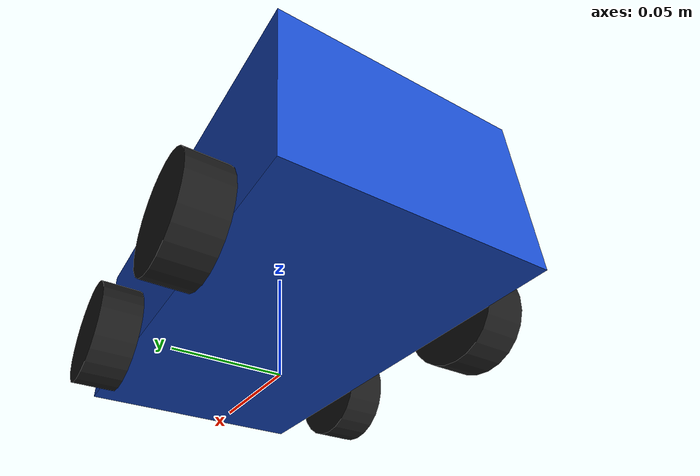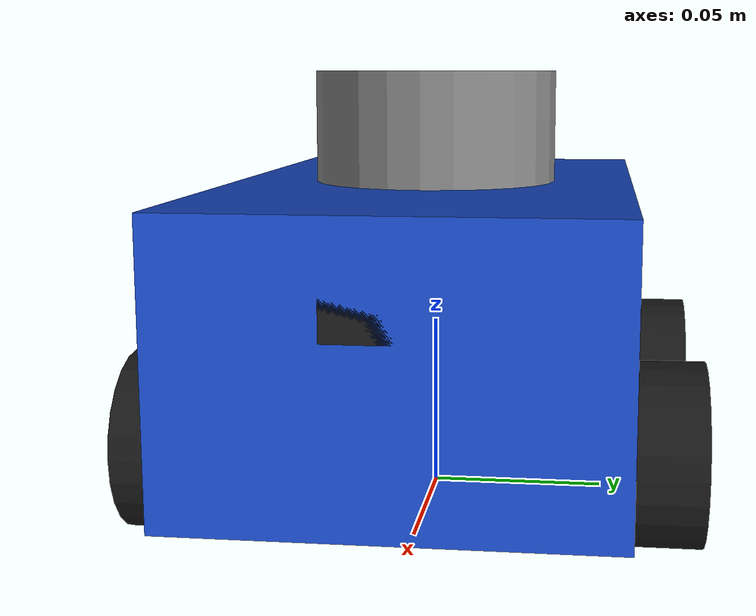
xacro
<?xml version="1.0"?>
<robot name="mi_robot" xmlns:xacro="http://www.ros.org/wiki/xacro">

  <!-- ===================== PARÁMETROS (MicroROS Yahboom) ===================== -->
  <xacro:property name="PI" value="3.14159265"/>

  <!-- Geometría -->
  <xacro:property name="largo"        value="0.1986"/>
  <xacro:property name="ancho_total"  value="0.153"/>
  <xacro:property name="via"          value="0.134"/>   <!-- centro a centro -->
  <xacro:property name="entre_ejes"   value="0.096"/>
  <xacro:property name="r_rueda"      value="0.0245"/>  <!-- diametro 49 mm -->
  <xacro:property name="ancho_rueda"  value="${ancho_total - via}"/>

  <!-- Chasis: de 15 mm a 92 mm sobre el suelo -->
  <xacro:property name="chasis_ancho" value="${via - ancho_rueda}"/>
  <xacro:property name="chasis_alto"  value="0.077"/>
  <xacro:property name="chasis_z"     value="0.0535"/>

  <!-- LiDAR MS200: centro a 108 mm; 92 + 32 = 124 mm de altura total -->
  <xacro:property name="lidar_z" value="0.108"/>
  <xacro:property name="lidar_r" value="0.035"/>
  <xacro:property name="lidar_h" value="0.032"/>

  <!-- Masas (suma = 0.906 kg) -->
  <xacro:property name="masa_total" value="0.906"/>
  <xacro:property name="m_rueda"    value="0.040"/>
  <xacro:property name="m_lidar"    value="0.060"/>
  <xacro:property name="m_camara"   value="0.020"/>
  <xacro:property name="m_chasis"   value="${masa_total - 4*m_rueda - m_lidar - m_camara}"/>

  <!-- Limites -->
  <xacro:property name="v_max"     value="1.0"/>
  <xacro:property name="w_max"     value="4.0"/>
  <xacro:property name="a_max"     value="2.0"/>
  <xacro:property name="alpha_max" value="${2*a_max/via}"/>   <!-- ~29.9 rad/s2 -->
  <xacro:property name="w_motor"   value="${450*2*PI/60}"/>   <!-- 47.1 rad/s -->
  <xacro:property name="tau_motor" value="0.392"/>            <!-- 4 kg.cm -->

  <!-- ===================== MATERIALES ===================== -->
  <material name="azul">  <color rgba="0.1 0.3 0.8 1"/></material>
  <material name="negro"> <color rgba="0.1 0.1 0.1 1"/></material>
  <material name="gris">  <color rgba="0.5 0.5 0.5 1"/></material>

  <!-- ===================== MACROS DE INERCIA ===================== -->
  <xacro:macro name="inercia_caja" params="m x y z xyz">
    <inertial>
      <origin xyz="${xyz}" rpy="0 0 0"/>
      <mass value="${m}"/>
      <inertia ixx="${m*(y*y+z*z)/12}" ixy="0" ixz="0"
               iyy="${m*(x*x+z*z)/12}" iyz="0"
               izz="${m*(x*x+y*y)/12}"/>
    </inertial>
  </xacro:macro>

  <xacro:macro name="inercia_cilindro" params="m r h xyz rpy">
    <inertial>
      <origin xyz="${xyz}" rpy="${rpy}"/>
      <mass value="${m}"/>
      <inertia ixx="${m*(3*r*r+h*h)/12}" ixy="0" ixz="0"
               iyy="${m*(3*r*r+h*h)/12}" iyz="0"
               izz="${m*r*r/2}"/>
    </inertial>
  </xacro:macro>

  <!-- ===================== CHASIS ===================== -->
  <link name="base_link">
    <visual>
      <origin xyz="0 0 ${chasis_z}"/>
      <geometry><box size="${largo} ${chasis_ancho} ${chasis_alto}"/></geometry>
      <material name="azul"/>
    </visual>
    <collision>
      <origin xyz="0 0 ${chasis_z}"/>
      <geometry><box size="${largo} ${chasis_ancho} ${chasis_alto}"/></geometry>
    </collision>
    <xacro:inercia_caja m="${m_chasis}" x="${largo}" y="${chasis_ancho}"
                        z="${chasis_alto}" xyz="0 0 ${chasis_z}"/>
  </link>

  <!-- ===================== RUEDAS (skid-steer) ===================== -->
  <xacro:macro name="rueda" params="nombre x y">
    <link name="${nombre}">
      <visual>
        <origin rpy="${PI/2} 0 0"/>
        <geometry><cylinder radius="${r_rueda}" length="${ancho_rueda}"/></geometry>
        <material name="negro"/>
      </visual>
      <collision>
        <origin rpy="${PI/2} 0 0"/>
        <geometry><cylinder radius="${r_rueda}" length="${ancho_rueda}"/></geometry>
      </collision>
      <xacro:inercia_cilindro m="${m_rueda}" r="${r_rueda}" h="${ancho_rueda}"
                              xyz="0 0 0" rpy="${PI/2} 0 0"/>
    </link>

    <joint name="${nombre}_joint" type="continuous">
      <parent link="base_link"/>
      <child link="${nombre}"/>
      <origin xyz="${x} ${y} ${r_rueda}"/>
      <axis xyz="0 1 0"/>
      <limit effort="${tau_motor}" velocity="${w_motor}"/>
    </joint>

    <gazebo reference="${nombre}">
      <mu1>1.0</mu1>
      <mu2>1.0</mu2>
    </gazebo>
  </xacro:macro>

  <xacro:rueda nombre="rueda_del_izq"  x="${ entre_ejes/2}" y="${ via/2}"/>
  <xacro:rueda nombre="rueda_tras_izq" x="${-entre_ejes/2}" y="${ via/2}"/>
  <xacro:rueda nombre="rueda_del_der"  x="${ entre_ejes/2}" y="${-via/2}"/>
  <xacro:rueda nombre="rueda_tras_der" x="${-entre_ejes/2}" y="${-via/2}"/>

  <!-- ===================== LIDAR ===================== -->
  <link name="lidar_link">
    <visual>
      <geometry><cylinder radius="${lidar_r}" length="${lidar_h}"/></geometry>
      <material name="gris"/>
    </visual>
    <collision>
      <geometry><cylinder radius="${lidar_r}" length="${lidar_h}"/></geometry>
    </collision>
    <xacro:inercia_cilindro m="${m_lidar}" r="${lidar_r}" h="${lidar_h}"
                            xyz="0 0 0" rpy="0 0 0"/>
  </link>
  <joint name="lidar_joint" type="fixed">
    <parent link="base_link"/>
    <child link="lidar_link"/>
    <origin xyz="0 0 ${lidar_z}"/>
  </joint>

  <!-- ===================== CAMARA ===================== -->
  <link name="camera_link">
    <visual>
      <geometry><box size="0.015 0.03 0.015"/></geometry>
      <material name="negro"/>
    </visual>
    <collision>
      <geometry><box size="0.015 0.03 0.015"/></geometry>
    </collision>
    <xacro:inercia_caja m="${m_camara}" x="0.015" y="0.03" z="0.015" xyz="0 0 0"/>
  </link>
  <joint name="camera_joint" type="fixed">
    <parent link="base_link"/>
    <child link="camera_link"/>
    <origin xyz="${largo/2 - 0.0075} 0 0.07"/>
  </joint>

  <link name="camera_optical_link"/>
  <joint name="camera_optical_joint" type="fixed">
    <parent link="camera_link"/>
    <child link="camera_optical_link"/>
    <origin rpy="${-PI/2} 0 ${-PI/2}"/>
  </joint>

  <!-- ===================== SENSORES GAZEBO ===================== -->
  <gazebo reference="lidar_link">
    <sensor name="lidar" type="gpu_lidar">
      <topic>scan</topic>
      <gz_frame_id>lidar_link</gz_frame_id>
      <update_rate>10</update_rate>
      <always_on>true</always_on>
      <visualize>true</visualize>
      <lidar>
        <scan>
          <horizontal>
            <samples>450</samples>
            <resolution>1</resolution>
            <min_angle>${-PI}</min_angle>
            <max_angle>${PI - 2*PI/450}</max_angle>
          </horizontal>
          <vertical>
            <samples>1</samples><resolution>1</resolution>
            <min_angle>0</min_angle><max_angle>0</max_angle>
          </vertical>
        </scan>
        <range>
          <min>0.03</min>
          <max>12.0</max>
          <resolution>0.01</resolution>
        </range>
        <noise>
          <type>gaussian</type>
          <mean>0.0</mean>
          <stddev>0.01</stddev>
        </noise>
      </lidar>
    </sensor>
  </gazebo>

  <gazebo reference="camera_link">
    <sensor name="camara" type="camera">
      <topic>image_raw</topic>
      <gz_frame_id>camera_optical_link</gz_frame_id>
      <update_rate>15</update_rate>
      <always_on>true</always_on>
      <camera>
        <camera_info_topic>camera_info</camera_info_topic>
        <horizontal_fov>1.047</horizontal_fov>
        <image><width>640</width><height>480</height><format>R8G8B8</format></image>
        <clip><near>0.05</near><far>15</far></clip>
      </camera>
    </sensor>
  </gazebo>

  <!-- ===================== PLUGINS ===================== -->
  <gazebo>
    <plugin filename="gz-sim-diff-drive-system" name="gz::sim::systems::DiffDrive">
      <left_joint>rueda_del_izq_joint</left_joint>
      <left_joint>rueda_tras_izq_joint</left_joint>
      <right_joint>rueda_del_der_joint</right_joint>
      <right_joint>rueda_tras_der_joint</right_joint>
      <wheel_separation>${via}</wheel_separation>
      <wheel_radius>${r_rueda}</wheel_radius>

      <topic>cmd_vel</topic>
      <odom_topic>odom</odom_topic>
      <frame_id>odom</frame_id>
      <child_frame_id>base_link</child_frame_id>
      <odom_publish_frequency>30</odom_publish_frequency>

      <max_linear_velocity>${v_max}</max_linear_velocity>
      <min_linear_velocity>${-v_max}</min_linear_velocity>
      <max_angular_velocity>${w_max}</max_angular_velocity>
      <min_angular_velocity>${-w_max}</min_angular_velocity>
      <max_linear_acceleration>${a_max}</max_linear_acceleration>
      <min_linear_acceleration>${-a_max}</min_linear_acceleration>
      <max_angular_acceleration>${alpha_max}</max_angular_acceleration>
      <min_angular_acceleration>${-alpha_max}</min_angular_acceleration>
    </plugin>

    <plugin filename="gz-sim-joint-state-publisher-system"
            name="gz::sim::systems::JointStatePublisher">
      <topic>joint_states</topic>
    </plugin>
  </gazebo>

  <!-- Pose real (verdad de terreno) del modelo en el mundo -> /model/mi_robot/pose -->
  <gazebo>
    <plugin filename="gz-sim-pose-publisher-system" name="gz::sim::systems::PosePublisher">
      <publish_link_pose>false</publish_link_pose>
      <publish_model_pose>true</publish_model_pose>
      <!-- En Harmonic la pose del modelo solo sale si este también es true (bug conocido) -->
      <publish_nested_model_pose>true</publish_nested_model_pose>
      <use_pose_vector_msg>false</use_pose_vector_msg>
      <update_frequency>30</update_frequency>
    </plugin>
  </gazebo>

</robot>
